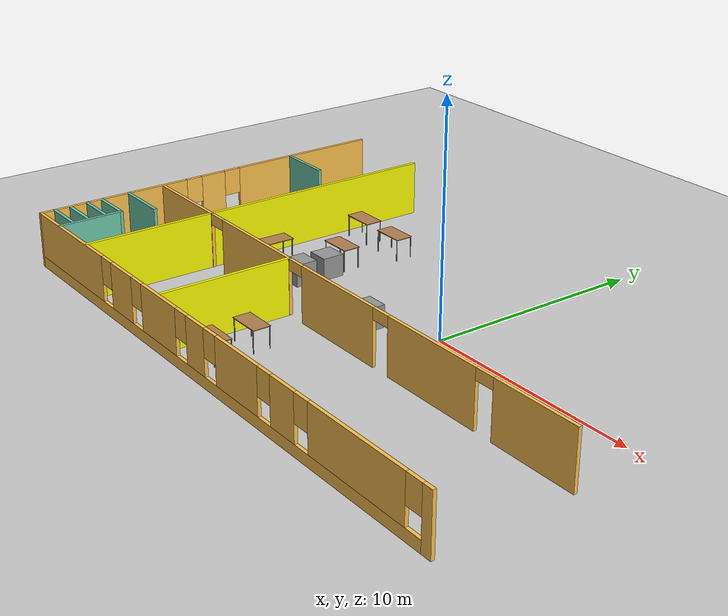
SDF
<sdf version="1.6">
 <world name="default">
  <model name="ground_plane">
   <static>1</static>
   <link name="link">
    <collision name="collision">
     <geometry><plane><normal>0 0 1</normal><size>100 100</size></plane></geometry>
     <surface><friction><ode><mu>100</mu><mu2>50</mu2></ode></friction></surface>
    </collision>
    <visual name="visual">
     <cast_shadows>0</cast_shadows>
     <geometry><plane><normal>0 0 1</normal><size>100 100</size></plane></geometry>
     <material>
      <script><uri>file://media/materials/scripts/gazebo.material</uri><name>Gazebo/Grey</name></script>
     </material>
    </visual>
   </link>
  </model>
  <model name="mybuilding">
   <pose>-2.36213 -0.825276 0 0 -0 0</pose>
   <link name="Wall_104">
    <collision name="Wall_104_Collision">
     <geometry><box><size>17.1 0.15 2.5</size></box></geometry>
     <pose>0 0 1.25 0 -0 0</pose>
    </collision>
    <visual name="Wall_104_Visual">
     <pose>0 0 1.25 0 -0 0</pose>
     <geometry><box><size>17.1 0.15 2.5</size></box></geometry>
     <material>
      <script><uri>file://media/materials/scripts/gazebo.material</uri><name>Gazebo/Grey</name></script>
      <ambient>1 1 0 1</ambient>
     </material>
     <meta><layer>0</layer></meta>
    </visual>
    <pose>-9.12987 -0.014892 0 0 0 -1.5708</pose>
   </link>
   <link name="Wall_106">
    <collision name="Wall_106_Collision">
     <geometry><box><size>2.5 0.15 2.5</size></box></geometry>
     <pose>0 0 1.25 0 -0 0</pose>
    </collision>
    <visual name="Wall_106_Visual">
     <pose>0 0 1.25 0 -0 0</pose>
     <geometry><box><size>2.5 0.15 2.5</size></box></geometry>
     <material>
      <script><uri>file://media/materials/scripts/gazebo.material</uri><name>Gazebo/Grey</name></script>
      <ambient>0.435294 0.796078 0.67451 1</ambient>
     </material>
     <meta><layer>0</layer></meta>
    </visual>
    <pose>-12.1433 4.3296 0 0 -0 0</pose>
   </link>
   <link name="Wall_111">
    <collision name="Wall_111_Collision">
     <geometry><box><size>2.5 0.15 2.5</size></box></geometry>
     <pose>0 0 1.25 0 -0 0</pose>
    </collision>
    <visual name="Wall_111_Visual">
     <pose>0 0 1.25 0 -0 0</pose>
     <geometry><box><size>2.5 0.15 2.5</size></box></geometry>
     <material>
      <script><uri>file://media/materials/scripts/gazebo.material</uri><name>Gazebo/Grey</name></script>
      <ambient>0.435294 0.796078 0.67451 1</ambient>
     </material>
     <meta><layer>0</layer></meta>
    </visual>
    <pose>-12.2145 -4.32806 0 0 -0 0</pose>
   </link>
   <link name="Wall_139">
    <collision name="Wall_139_Collision">
     <geometry><box><size>3 0.15 2.5</size></box></geometry>
     <pose>0 0 1.25 0 -0 0</pose>
    </collision>
    <visual name="Wall_139_Visual">
     <pose>0 0 1.25 0 -0 0</pose>
     <geometry><box><size>3 0.15 2.5</size></box></geometry>
     <material>
      <script><uri>file://media/materials/scripts/gazebo.material</uri><name>Gazebo/Grey</name></script>
      <ambient>0.435294 0.796078 0.67451 1</ambient>
     </material>
     <meta><layer>0</layer></meta>
    </visual>
    <pose>-11.6 -7.09333 0 0 -0 1.5708</pose>
   </link>
   <link name="Wall_140">
    <collision name="Wall_140_Collision">
     <geometry><box><size>1.9 0.15 2.5</size></box></geometry>
     <pose>0 0 1.25 0 -0 0</pose>
    </collision>
    <visual name="Wall_140_Visual">
     <pose>0 0 1.25 0 -0 0</pose>
     <geometry><box><size>1.9 0.15 2.5</size></box></geometry>
     <material>
      <script><uri>file://media/materials/scripts/gazebo.material</uri><name>Gazebo/Grey</name></script>
      <ambient>0.435294 0.796078 0.67451 1</ambient>
     </material>
     <meta><layer>0</layer></meta>
    </visual>
    <pose>-12.475 -5.66833 0 0 -0 3.14159</pose>
   </link>
   <link name="Wall_142">
    <collision name="Wall_142_Collision">
     <geometry><box><size>1.75 0.15 2.5</size></box></geometry>
     <pose>0 0 1.25 0 -0 0</pose>
    </collision>
    <visual name="Wall_142_Visual">
     <pose>0 0 1.25 0 -0 0</pose>
     <geometry><box><size>1.75 0.15 2.5</size></box></geometry>
     <material>
      <script><uri>file://media/materials/scripts/gazebo.material</uri><name>Gazebo/Grey</name></script>
      <ambient>0.435294 0.796078 0.67451 1</ambient>
     </material>
     <meta><layer>0</layer></meta>
    </visual>
    <pose>-12.4841 -7.19003 0 0 -0 0</pose>
   </link>
   <link name="Wall_144">
    <collision name="Wall_144_Collision">
     <geometry><box><size>1.8 0.15 2.5</size></box></geometry>
     <pose>0 0 1.25 0 -0 0</pose>
    </collision>
    <visual name="Wall_144_Visual">
     <pose>0 0 1.25 0 -0 0</pose>
     <geometry><box><size>1.8 0.15 2.5</size></box></geometry>
     <material>
      <script><uri>file://media/materials/scripts/gazebo.material</uri><name>Gazebo/Grey</name></script>
      <ambient>0.435294 0.796078 0.67451 1</ambient>
     </material>
     <meta><layer>0</layer></meta>
    </visual>
    <pose>-12.5407 -6.37701 0 0 -0 0</pose>
   </link>
   <link name="Wall_147">
    <collision name="Wall_147_Collision">
     <geometry><box><size>1.8 0.15 2.5</size></box></geometry>
     <pose>0 0 1.25 0 -0 0</pose>
    </collision>
    <visual name="Wall_147_Visual">
     <pose>0 0 1.25 0 -0 0</pose>
     <geometry><box><size>1.8 0.15 2.5</size></box></geometry>
     <material>
      <script><uri>file://media/materials/scripts/gazebo.material</uri><name>Gazebo/Grey</name></script>
      <ambient>0.435294 0.796078 0.67451 1</ambient>
     </material>
     <meta><layer>0</layer></meta>
    </visual>
    <pose>-12.5758 -7.90564 0 0 -0 0</pose>
   </link>
   <link name="Wall_156">
    <collision name="Wall_156_Collision">
     <geometry><box><size>6 0.15 2.5</size></box></geometry>
     <pose>0 0 1.25 0 -0 0</pose>
    </collision>
    <visual name="Wall_156_Visual">
     <pose>0 0 1.25 0 -0 0</pose>
     <geometry><box><size>6 0.15 2.5</size></box></geometry>
     <material>
      <script><uri>file://media/materials/scripts/gazebo.material</uri><name>Gazebo/Grey</name></script>
      <ambient>1 1 0 1</ambient>
     </material>
     <meta><layer>0</layer></meta>
    </visual>
    <pose>-3.08532 -5.54983 0 0 0 -1.5708</pose>
   </link>
   <link name="Wall_89">
    <pose>-13.425 0 0 0 -0 1.5708</pose>
    <visual name="Wall_89_Visual_0">
     <pose>-5.00389 0 1.25 0 -0 0</pose>
     <geometry><box><size>7.24221 0.15 2.5</size></box></geometry>
     <material>
      <script><uri>file://media/materials/scripts/gazebo.material</uri><name>Gazebo/Grey</name></script>
      <ambient>1 0.764706 0.305882 1</ambient>
     </material>
     <meta><layer>0</layer></meta>
    </visual>
    <collision name="Wall_89_Collision_0">
     <geometry><box><size>7.24221 0.15 2.5</size></box></geometry>
     <pose>-5.00389 0 1.25 0 -0 0</pose>
    </collision>
    <visual name="Wall_89_Visual_1">
     <pose>3.62111 0 0.25 0 -0 0</pose>
     <geometry><box><size>10.0078 0.15 0.5</size></box></geometry>
     <material>
      <script><uri>file://media/materials/scripts/gazebo.material</uri><name>Gazebo/Grey</name></script>
      <ambient>1 0.764706 0.305882 1</ambient>
     </material>
     <meta><layer>0</layer></meta>
    </visual>
    <collision name="Wall_89_Collision_1">
     <geometry><box><size>10.0078 0.15 0.5</size></box></geometry>
     <pose>3.62111 0 0.25 0 -0 0</pose>
    </collision>
    <visual name="Wall_89_Visual_2">
     <pose>0.026482 0 1.5 0 -0 0</pose>
     <geometry><box><size>1.21854 0.15 2</size></box></geometry>
     <material>
      <script><uri>file://media/materials/scripts/gazebo.material</uri><name>Gazebo/Grey</name></script>
      <ambient>1 0.764706 0.305882 1</ambient>
     </material>
     <meta><layer>0</layer></meta>
    </visual>
    <collision name="Wall_89_Collision_2">
     <geometry><box><size>1.21854 0.15 2</size></box></geometry>
     <pose>0.026482 0 1.5 0 -0 0</pose>
    </collision>
    <visual name="Wall_89_Visual_3">
     <pose>5.03038 0 1.5 0 -0 0</pose>
     <geometry><box><size>7.18925 0.15 2</size></box></geometry>
     <material>
      <script><uri>file://media/materials/scripts/gazebo.material</uri><name>Gazebo/Grey</name></script>
      <ambient>1 0.764706 0.305882 1</ambient>
     </material>
     <meta><layer>0</layer></meta>
    </visual>
    <collision name="Wall_89_Collision_3">
     <geometry><box><size>7.18925 0.15 2</size></box></geometry>
     <pose>5.03038 0 1.5 0 -0 0</pose>
    </collision>
    <visual name="Wall_89_Visual_4">
     <pose>-0.982788 0 1.9 0 -0 0</pose>
     <geometry><box><size>0.8 0.15 1.2</size></box></geometry>
     <material>
      <script><uri>file://media/materials/scripts/gazebo.material</uri><name>Gazebo/Grey</name></script>
      <ambient>1 0.764706 0.305882 1</ambient>
     </material>
     <meta><layer>0</layer></meta>
    </visual>
    <collision name="Wall_89_Collision_4">
     <geometry><box><size>0.8 0.15 1.2</size></box></geometry>
     <pose>-0.982788 0 1.9 0 -0 0</pose>
    </collision>
    <visual name="Wall_89_Visual_5">
     <pose>1.03575 0 1.9 0 -0 0</pose>
     <geometry><box><size>0.8 0.15 1.2</size></box></geometry>
     <material>
      <script><uri>file://media/materials/scripts/gazebo.material</uri><name>Gazebo/Grey</name></script>
      <ambient>1 0.764706 0.305882 1</ambient>
     </material>
     <meta><layer>0</layer></meta>
    </visual>
    <collision name="Wall_89_Collision_5">
     <geometry><box><size>0.8 0.15 1.2</size></box></geometry>
     <pose>1.03575 0 1.9 0 -0 0</pose>
    </collision>
   </link>
   <link name="Wall_92">
    <pose>0 -8.55 0 0 -0 3.14159</pose>
    <visual name="Wall_92_Visual_0">
     <pose>-13.2614 0 1.25 0 -0 0</pose>
     <geometry><box><size>0.477212 0.15 2.5</size></box></geometry>
     <material>
      <script><uri>file://media/materials/scripts/gazebo.material</uri><name>Gazebo/Grey</name></script>
      <ambient>1 0.764706 0.305882 1</ambient>
     </material>
     <meta><layer>0</layer></meta>
    </visual>
    <collision name="Wall_92_Collision_0">
     <geometry><box><size>0.477212 0.15 2.5</size></box></geometry>
     <pose>-13.2614 0 1.25 0 -0 0</pose>
    </collision>
    <visual name="Wall_92_Visual_1">
     <pose>0.238606 0 0.25 0 -0 0</pose>
     <geometry><box><size>26.5228 0.15 0.5</size></box></geometry>
     <material>
      <script><uri>file://media/materials/scripts/gazebo.material</uri><name>Gazebo/Grey</name></script>
      <ambient>1 0.764706 0.305882 1</ambient>
     </material>
     <meta><layer>0</layer></meta>
    </visual>
    <collision name="Wall_92_Collision_1">
     <geometry><box><size>26.5228 0.15 0.5</size></box></geometry>
     <pose>0.238606 0 0.25 0 -0 0</pose>
    </collision>
    <visual name="Wall_92_Visual_2">
     <pose>-9.63968 0 1.5 0 -0 0</pose>
     <geometry><box><size>5.16621 0.15 2</size></box></geometry>
     <material>
      <script><uri>file://media/materials/scripts/gazebo.material</uri><name>Gazebo/Grey</name></script>
      <ambient>1 0.764706 0.305882 1</ambient>
     </material>
     <meta><layer>0</layer></meta>
    </visual>
    <collision name="Wall_92_Collision_2">
     <geometry><box><size>5.16621 0.15 2</size></box></geometry>
     <pose>-9.63968 0 1.5 0 -0 0</pose>
    </collision>
    <visual name="Wall_92_Visual_3">
     <pose>-5.52728 0 1.5 0 -0 0</pose>
     <geometry><box><size>1.45858 0.15 2</size></box></geometry>
     <material>
      <script><uri>file://media/materials/scripts/gazebo.material</uri><name>Gazebo/Grey</name></script>
      <ambient>1 0.764706 0.305882 1</ambient>
     </material>
     <meta><layer>0</layer></meta>
    </visual>
    <collision name="Wall_92_Collision_3">
     <geometry><box><size>1.45858 0.15 2</size></box></geometry>
     <pose>-5.52728 0 1.5 0 -0 0</pose>
    </collision>
    <visual name="Wall_92_Visual_4">
     <pose>-2.60995 0 1.5 0 -0 0</pose>
     <geometry><box><size>2.77609 0.15 2</size></box></geometry>
     <material>
      <script><uri>file://media/materials/scripts/gazebo.material</uri><name>Gazebo/Grey</name></script>
      <ambient>1 0.764706 0.305882 1</ambient>
     </material>
     <meta><layer>0</layer></meta>
    </visual>
    <collision name="Wall_92_Collision_4">
     <geometry><box><size>2.77609 0.15 2</size></box></geometry>
     <pose>-2.60995 0 1.5 0 -0 0</pose>
    </collision>
    <visual name="Wall_92_Visual_5">
     <pose>0.213279 0 1.5 0 -0 0</pose>
     <geometry><box><size>1.27037 0.15 2</size></box></geometry>
     <material>
      <script><uri>file://media/materials/scripts/gazebo.material</uri><name>Gazebo/Grey</name></script>
      <ambient>1 0.764706 0.305882 1</ambient>
     </material>
     <meta><layer>0</layer></meta>
    </visual>
    <collision name="Wall_92_Collision_5">
     <geometry><box><size>1.27037 0.15 2</size></box></geometry>
     <pose>0.213279 0 1.5 0 -0 0</pose>
    </collision>
    <visual name="Wall_92_Visual_6">
     <pose>2.9709 0 1.5 0 -0 0</pose>
     <geometry><box><size>2.64487 0.15 2</size></box></geometry>
     <material>
      <script><uri>file://media/materials/scripts/gazebo.material</uri><name>Gazebo/Grey</name></script>
      <ambient>1 0.764706 0.305882 1</ambient>
     </material>
     <meta><layer>0</layer></meta>
    </visual>
    <collision name="Wall_92_Collision_6">
     <geometry><box><size>2.64487 0.15 2</size></box></geometry>
     <pose>2.9709 0 1.5 0 -0 0</pose>
    </collision>
    <visual name="Wall_92_Visual_7">
     <pose>5.9481 0 1.5 0 -0 0</pose>
     <geometry><box><size>1.70954 0.15 2</size></box></geometry>
     <material>
      <script><uri>file://media/materials/scripts/gazebo.material</uri><name>Gazebo/Grey</name></script>
      <ambient>1 0.764706 0.305882 1</ambient>
     </material>
     <meta><layer>0</layer></meta>
    </visual>
    <collision name="Wall_92_Collision_7">
     <geometry><box><size>1.70954 0.15 2</size></box></geometry>
     <pose>5.9481 0 1.5 0 -0 0</pose>
    </collision>
    <visual name="Wall_92_Visual_8">
     <pose>10.5514 0 1.5 0 -0 0</pose>
     <geometry><box><size>5.89713 0.15 2</size></box></geometry>
     <material>
      <script><uri>file://media/materials/scripts/gazebo.material</uri><name>Gazebo/Grey</name></script>
      <ambient>1 0.764706 0.305882 1</ambient>
     </material>
     <meta><layer>0</layer></meta>
    </visual>
    <collision name="Wall_92_Collision_8">
     <geometry><box><size>5.89713 0.15 2</size></box></geometry>
     <pose>10.5514 0 1.5 0 -0 0</pose>
    </collision>
    <visual name="Wall_92_Visual_9">
     <pose>-12.6228 0 1.9 0 -0 0</pose>
     <geometry><box><size>0.8 0.15 1.2</size></box></geometry>
     <material>
      <script><uri>file://media/materials/scripts/gazebo.material</uri><name>Gazebo/Grey</name></script>
      <ambient>1 0.764706 0.305882 1</ambient>
     </material>
     <meta><layer>0</layer></meta>
    </visual>
    <collision name="Wall_92_Collision_9">
     <geometry><box><size>0.8 0.15 1.2</size></box></geometry>
     <pose>-12.6228 0 1.9 0 -0 0</pose>
    </collision>
    <visual name="Wall_92_Visual_10">
     <pose>-6.65658 0 1.9 0 -0 0</pose>
     <geometry><box><size>0.8 0.15 1.2</size></box></geometry>
     <material>
      <script><uri>file://media/materials/scripts/gazebo.material</uri><name>Gazebo/Grey</name></script>
      <ambient>1 0.764706 0.305882 1</ambient>
     </material>
     <meta><layer>0</layer></meta>
    </visual>
    <collision name="Wall_92_Collision_10">
     <geometry><box><size>0.8 0.15 1.2</size></box></geometry>
     <pose>-6.65658 0 1.9 0 -0 0</pose>
    </collision>
    <visual name="Wall_92_Visual_11">
     <pose>-4.39799 0 1.9 0 -0 0</pose>
     <geometry><box><size>0.8 0.15 1.2</size></box></geometry>
     <material>
      <script><uri>file://media/materials/scripts/gazebo.material</uri><name>Gazebo/Grey</name></script>
      <ambient>1 0.764706 0.305882 1</ambient>
     </material>
     <meta><layer>0</layer></meta>
    </visual>
    <collision name="Wall_92_Collision_11">
     <geometry><box><size>0.8 0.15 1.2</size></box></geometry>
     <pose>-4.39799 0 1.9 0 -0 0</pose>
    </collision>
    <visual name="Wall_92_Visual_12">
     <pose>-0.821904 0 1.9 0 -0 0</pose>
     <geometry><box><size>0.8 0.15 1.2</size></box></geometry>
     <material>
      <script><uri>file://media/materials/scripts/gazebo.material</uri><name>Gazebo/Grey</name></script>
      <ambient>1 0.764706 0.305882 1</ambient>
     </material>
     <meta><layer>0</layer></meta>
    </visual>
    <collision name="Wall_92_Collision_12">
     <geometry><box><size>0.8 0.15 1.2</size></box></geometry>
     <pose>-0.821904 0 1.9 0 -0 0</pose>
    </collision>
    <visual name="Wall_92_Visual_13">
     <pose>1.24846 0 1.9 0 -0 0</pose>
     <geometry><box><size>0.8 0.15 1.2</size></box></geometry>
     <material>
      <script><uri>file://media/materials/scripts/gazebo.material</uri><name>Gazebo/Grey</name></script>
      <ambient>1 0.764706 0.305882 1</ambient>
     </material>
     <meta><layer>0</layer></meta>
    </visual>
    <collision name="Wall_92_Collision_13">
     <geometry><box><size>0.8 0.15 1.2</size></box></geometry>
     <pose>1.24846 0 1.9 0 -0 0</pose>
    </collision>
    <visual name="Wall_92_Visual_14">
     <pose>4.69333 0 1.9 0 -0 0</pose>
     <geometry><box><size>0.8 0.15 1.2</size></box></geometry>
     <material>
      <script><uri>file://media/materials/scripts/gazebo.material</uri><name>Gazebo/Grey</name></script>
      <ambient>1 0.764706 0.305882 1</ambient>
     </material>
     <meta><layer>0</layer></meta>
    </visual>
    <collision name="Wall_92_Collision_14">
     <geometry><box><size>0.8 0.15 1.2</size></box></geometry>
     <pose>4.69333 0 1.9 0 -0 0</pose>
    </collision>
    <visual name="Wall_92_Visual_15">
     <pose>7.20287 0 1.9 0 -0 0</pose>
     <geometry><box><size>0.8 0.15 1.2</size></box></geometry>
     <material>
      <script><uri>file://media/materials/scripts/gazebo.material</uri><name>Gazebo/Grey</name></script>
      <ambient>1 0.764706 0.305882 1</ambient>
     </material>
     <meta><layer>0</layer></meta>
    </visual>
    <collision name="Wall_92_Collision_15">
     <geometry><box><size>0.8 0.15 1.2</size></box></geometry>
     <pose>7.20287 0 1.9 0 -0 0</pose>
    </collision>
   </link>
   <link name="Wall_96">
    <pose>-0.005489 -2.58663 0 0 -0 0</pose>
    <visual name="Wall_96_Visual_0">
     <pose>-11.1995 0 1.25 0 -0 0</pose>
     <geometry><box><size>4.35098 0.15 2.5</size></box></geometry>
     <material>
      <script><uri>file://media/materials/scripts/gazebo.material</uri><name>Gazebo/Grey</name></script>
      <ambient>1 0.764706 0.305882 1</ambient>
     </material>
     <meta><layer>0</layer></meta>
    </visual>
    <collision name="Wall_96_Collision_0">
     <geometry><box><size>4.35098 0.15 2.5</size></box></geometry>
     <pose>-11.1995 0 1.25 0 -0 0</pose>
    </collision>
    <visual name="Wall_96_Visual_1">
     <pose>-5.56001 0 1.25 0 -0 0</pose>
     <geometry><box><size>5.12803 0.15 2.5</size></box></geometry>
     <material>
      <script><uri>file://media/materials/scripts/gazebo.material</uri><name>Gazebo/Grey</name></script>
      <ambient>1 0.764706 0.305882 1</ambient>
     </material>
     <meta><layer>0</layer></meta>
    </visual>
    <collision name="Wall_96_Collision_1">
     <geometry><box><size>5.12803 0.15 2.5</size></box></geometry>
     <pose>-5.56001 0 1.25 0 -0 0</pose>
    </collision>
    <visual name="Wall_96_Visual_2">
     <pose>0.261721 0 1.25 0 -0 0</pose>
     <geometry><box><size>4.71542 0.15 2.5</size></box></geometry>
     <material>
      <script><uri>file://media/materials/scripts/gazebo.material</uri><name>Gazebo/Grey</name></script>
      <ambient>1 0.764706 0.305882 1</ambient>
     </material>
     <meta><layer>0</layer></meta>
    </visual>
    <collision name="Wall_96_Collision_2">
     <geometry><box><size>4.71542 0.15 2.5</size></box></geometry>
     <pose>0.261721 0 1.25 0 -0 0</pose>
    </collision>
    <visual name="Wall_96_Visual_3">
     <pose>5.98325 0 1.25 0 -0 0</pose>
     <geometry><box><size>4.92764 0.15 2.5</size></box></geometry>
     <material>
      <script><uri>file://media/materials/scripts/gazebo.material</uri><name>Gazebo/Grey</name></script>
      <ambient>1 0.764706 0.305882 1</ambient>
     </material>
     <meta><layer>0</layer></meta>
    </visual>
    <collision name="Wall_96_Collision_3">
     <geometry><box><size>4.92764 0.15 2.5</size></box></geometry>
     <pose>5.98325 0 1.25 0 -0 0</pose>
    </collision>
    <visual name="Wall_96_Visual_4">
     <pose>11.361 0 1.25 0 -0 0</pose>
     <geometry><box><size>4.02792 0.15 2.5</size></box></geometry>
     <material>
      <script><uri>file://media/materials/scripts/gazebo.material</uri><name>Gazebo/Grey</name></script>
      <ambient>1 0.764706 0.305882 1</ambient>
     </material>
     <meta><layer>0</layer></meta>
    </visual>
    <collision name="Wall_96_Collision_4">
     <geometry><box><size>4.02792 0.15 2.5</size></box></geometry>
     <pose>11.361 0 1.25 0 -0 0</pose>
    </collision>
    <visual name="Wall_96_Visual_5">
     <pose>-8.57402 0 2.25 0 -0 0</pose>
     <geometry><box><size>0.9 0.15 0.5</size></box></geometry>
     <material>
      <script><uri>file://media/materials/scripts/gazebo.material</uri><name>Gazebo/Grey</name></script>
      <ambient>1 0.764706 0.305882 1</ambient>
     </material>
     <meta><layer>0</layer></meta>
    </visual>
    <collision name="Wall_96_Collision_5">
     <geometry><box><size>0.9 0.15 0.5</size></box></geometry>
     <pose>-8.57402 0 2.25 0 -0 0</pose>
    </collision>
    <visual name="Wall_96_Visual_6">
     <pose>-2.54599 0 2.25 0 -0 0</pose>
     <geometry><box><size>0.9 0.15 0.5</size></box></geometry>
     <material>
      <script><uri>file://media/materials/scripts/gazebo.material</uri><name>Gazebo/Grey</name></script>
      <ambient>1 0.764706 0.305882 1</ambient>
     </material>
     <meta><layer>0</layer></meta>
    </visual>
    <collision name="Wall_96_Collision_6">
     <geometry><box><size>0.9 0.15 0.5</size></box></geometry>
     <pose>-2.54599 0 2.25 0 -0 0</pose>
    </collision>
    <visual name="Wall_96_Visual_7">
     <pose>3.06943 0 2.25 0 -0 0</pose>
     <geometry><box><size>0.9 0.15 0.5</size></box></geometry>
     <material>
      <script><uri>file://media/materials/scripts/gazebo.material</uri><name>Gazebo/Grey</name></script>
      <ambient>1 0.764706 0.305882 1</ambient>
     </material>
     <meta><layer>0</layer></meta>
    </visual>
    <collision name="Wall_96_Collision_7">
     <geometry><box><size>0.9 0.15 0.5</size></box></geometry>
     <pose>3.06943 0 2.25 0 -0 0</pose>
    </collision>
    <visual name="Wall_96_Visual_8">
     <pose>8.89708 0 2.25 0 -0 0</pose>
     <geometry><box><size>0.9 0.15 0.5</size></box></geometry>
     <material>
      <script><uri>file://media/materials/scripts/gazebo.material</uri><name>Gazebo/Grey</name></script>
      <ambient>1 0.764706 0.305882 1</ambient>
     </material>
     <meta><layer>0</layer></meta>
    </visual>
    <collision name="Wall_96_Collision_8">
     <geometry><box><size>0.9 0.15 0.5</size></box></geometry>
     <pose>8.89708 0 2.25 0 -0 0</pose>
    </collision>
   </link>
   <static>1</static>
  </model>
  <model name="table_0">
   <static>1</static>
   <link name="link">
    <collision name="surface">
     <pose>0 0 1 0 -0 0</pose>
     <geometry><box><size>1.5 0.8 0.03</size></box></geometry>
     <surface><friction><ode><mu>0.6</mu><mu2>0.6</mu2></ode></friction></surface>
    </collision>
    <visual name="visual1">
     <pose>0 0 1 0 -0 0</pose>
     <geometry><box><size>1.5 0.8 0.03</size></box></geometry>
     <material>
      <script><uri>file://media/materials/scripts/gazebo.material</uri><name>Gazebo/Wood</name></script>
     </material>
    </visual>
    <collision name="front_left_leg">
     <pose>0.68 0.38 0.5 0 -0 0</pose>
     <geometry><cylinder><radius>0.02</radius><length>1</length></cylinder></geometry>
    </collision>
    <visual name="front_left_leg">
     <pose>0.68 0.38 0.5 0 -0 0</pose>
     <geometry><cylinder><radius>0.02</radius><length>1</length></cylinder></geometry>
     <material>
      <script><uri>file://media/materials/scripts/gazebo.material</uri><name>Gazebo/Grey</name></script>
     </material>
    </visual>
    <collision name="front_right_leg">
     <pose>0.68 -0.38 0.5 0 -0 0</pose>
     <geometry><cylinder><radius>0.02</radius><length>1</length></cylinder></geometry>
    </collision>
    <visual name="front_right_leg">
     <pose>0.68 -0.38 0.5 0 -0 0</pose>
     <geometry><cylinder><radius>0.02</radius><length>1</length></cylinder></geometry>
     <material>
      <script><uri>file://media/materials/scripts/gazebo.material</uri><name>Gazebo/Grey</name></script>
     </material>
    </visual>
    <collision name="back_right_leg">
     <pose>-0.68 -0.38 0.5 0 -0 0</pose>
     <geometry><cylinder><radius>0.02</radius><length>1</length></cylinder></geometry>
    </collision>
    <visual name="back_right_leg">
     <pose>-0.68 -0.38 0.5 0 -0 0</pose>
     <geometry><cylinder><radius>0.02</radius><length>1</length></cylinder></geometry>
     <material>
      <script><uri>file://media/materials/scripts/gazebo.material</uri><name>Gazebo/Grey</name></script>
     </material>
    </visual>
    <collision name="back_left_leg">
     <pose>-0.68 0.38 0.5 0 -0 0</pose>
     <geometry><cylinder><radius>0.02</radius><length>1</length></cylinder></geometry>
    </collision>
    <visual name="back_left_leg">
     <pose>-0.68 0.38 0.5 0 -0 0</pose>
     <geometry><cylinder><radius>0.02</radius><length>1</length></cylinder></geometry>
     <material>
      <script><uri>file://media/materials/scripts/gazebo.material</uri><name>Gazebo/Grey</name></script>
     </material>
    </visual>
   </link>
   <pose>-7.90072 3.80794 0 0 -0 0</pose>
  </model>
  <model name="table_1">
   <static>1</static>
   <link name="link">
    <collision name="surface">
     <pose>0 0 1 0 -0 0</pose>
     <geometry><box><size>1.5 0.8 0.03</size></box></geometry>
     <surface><friction><ode><mu>0.6</mu><mu2>0.6</mu2></ode></friction></surface>
    </collision>
    <visual name="visual1">
     <pose>0 0 1 0 -0 0</pose>
     <geometry><box><size>1.5 0.8 0.03</size></box></geometry>
     <material>
      <script><uri>file://media/materials/scripts/gazebo.material</uri><name>Gazebo/Wood</name></script>
     </material>
    </visual>
    <collision name="front_left_leg">
     <pose>0.68 0.38 0.5 0 -0 0</pose>
     <geometry><cylinder><radius>0.02</radius><length>1</length></cylinder></geometry>
    </collision>
    <visual name="front_left_leg">
     <pose>0.68 0.38 0.5 0 -0 0</pose>
     <geometry><cylinder><radius>0.02</radius><length>1</length></cylinder></geometry>
     <material>
      <script><uri>file://media/materials/scripts/gazebo.material</uri><name>Gazebo/Grey</name></script>
     </material>
    </visual>
    <collision name="front_right_leg">
     <pose>0.68 -0.38 0.5 0 -0 0</pose>
     <geometry><cylinder><radius>0.02</radius><length>1</length></cylinder></geometry>
    </collision>
    <visual name="front_right_leg">
     <pose>0.68 -0.38 0.5 0 -0 0</pose>
     <geometry><cylinder><radius>0.02</radius><length>1</length></cylinder></geometry>
     <material>
      <script><uri>file://media/materials/scripts/gazebo.material</uri><name>Gazebo/Grey</name></script>
     </material>
    </visual>
    <collision name="back_right_leg">
     <pose>-0.68 -0.38 0.5 0 -0 0</pose>
     <geometry><cylinder><radius>0.02</radius><length>1</length></cylinder></geometry>
    </collision>
    <visual name="back_right_leg">
     <pose>-0.68 -0.38 0.5 0 -0 0</pose>
     <geometry><cylinder><radius>0.02</radius><length>1</length></cylinder></geometry>
     <material>
      <script><uri>file://media/materials/scripts/gazebo.material</uri><name>Gazebo/Grey</name></script>
     </material>
    </visual>
    <collision name="back_left_leg">
     <pose>-0.68 0.38 0.5 0 -0 0</pose>
     <geometry><cylinder><radius>0.02</radius><length>1</length></cylinder></geometry>
    </collision>
    <visual name="back_left_leg">
     <pose>-0.68 0.38 0.5 0 -0 0</pose>
     <geometry><cylinder><radius>0.02</radius><length>1</length></cylinder></geometry>
     <material>
      <script><uri>file://media/materials/scripts/gazebo.material</uri><name>Gazebo/Grey</name></script>
     </material>
    </visual>
   </link>
   <pose>-10.1719 3.82975 0 0 -0 0</pose>
  </model>
  <model name="table_9">
   <static>1</static>
   <link name="link">
    <collision name="surface">
     <pose>0 0 1 0 -0 0</pose>
     <geometry><box><size>1.5 0.8 0.03</size></box></geometry>
     <surface><friction><ode><mu>0.6</mu><mu2>0.6</mu2></ode></friction></surface>
    </collision>
    <visual name="visual1">
     <pose>0 0 1 0 -0 0</pose>
     <geometry><box><size>1.5 0.8 0.03</size></box></geometry>
     <material>
      <script><uri>file://media/materials/scripts/gazebo.material</uri><name>Gazebo/Wood</name></script>
     </material>
    </visual>
    <collision name="front_left_leg">
     <pose>0.68 0.38 0.5 0 -0 0</pose>
     <geometry><cylinder><radius>0.02</radius><length>1</length></cylinder></geometry>
    </collision>
    <visual name="front_left_leg">
     <pose>0.68 0.38 0.5 0 -0 0</pose>
     <geometry><cylinder><radius>0.02</radius><length>1</length></cylinder></geometry>
     <material>
      <script><uri>file://media/materials/scripts/gazebo.material</uri><name>Gazebo/Grey</name></script>
     </material>
    </visual>
    <collision name="front_right_leg">
     <pose>0.68 -0.38 0.5 0 -0 0</pose>
     <geometry><cylinder><radius>0.02</radius><length>1</length></cylinder></geometry>
    </collision>
    <visual name="front_right_leg">
     <pose>0.68 -0.38 0.5 0 -0 0</pose>
     <geometry><cylinder><radius>0.02</radius><length>1</length></cylinder></geometry>
     <material>
      <script><uri>file://media/materials/scripts/gazebo.material</uri><name>Gazebo/Grey</name></script>
     </material>
    </visual>
    <collision name="back_right_leg">
     <pose>-0.68 -0.38 0.5 0 -0 0</pose>
     <geometry><cylinder><radius>0.02</radius><length>1</length></cylinder></geometry>
    </collision>
    <visual name="back_right_leg">
     <pose>-0.68 -0.38 0.5 0 -0 0</pose>
     <geometry><cylinder><radius>0.02</radius><length>1</length></cylinder></geometry>
     <material>
      <script><uri>file://media/materials/scripts/gazebo.material</uri><name>Gazebo/Grey</name></script>
     </material>
    </visual>
    <collision name="back_left_leg">
     <pose>-0.68 0.38 0.5 0 -0 0</pose>
     <geometry><cylinder><radius>0.02</radius><length>1</length></cylinder></geometry>
    </collision>
    <visual name="back_left_leg">
     <pose>-0.68 0.38 0.5 0 -0 0</pose>
     <geometry><cylinder><radius>0.02</radius><length>1</length></cylinder></geometry>
     <material>
      <script><uri>file://media/materials/scripts/gazebo.material</uri><name>Gazebo/Grey</name></script>
     </material>
    </visual>
   </link>
   <pose>-3.99606 -6.13361 0 0 -0 0</pose>
  </model>
  <model name="table_10">
   <static>1</static>
   <link name="link">
    <collision name="surface">
     <pose>0 0 1 0 -0 0</pose>
     <geometry><box><size>1.5 0.8 0.03</size></box></geometry>
     <surface><friction><ode><mu>0.6</mu><mu2>0.6</mu2></ode></friction></surface>
    </collision>
    <visual name="visual1">
     <pose>0 0 1 0 -0 0</pose>
     <geometry><box><size>1.5 0.8 0.03</size></box></geometry>
     <material>
      <script><uri>file://media/materials/scripts/gazebo.material</uri><name>Gazebo/Wood</name></script>
     </material>
    </visual>
    <collision name="front_left_leg">
     <pose>0.68 0.38 0.5 0 -0 0</pose>
     <geometry><cylinder><radius>0.02</radius><length>1</length></cylinder></geometry>
    </collision>
    <visual name="front_left_leg">
     <pose>0.68 0.38 0.5 0 -0 0</pose>
     <geometry><cylinder><radius>0.02</radius><length>1</length></cylinder></geometry>
     <material>
      <script><uri>file://media/materials/scripts/gazebo.material</uri><name>Gazebo/Grey</name></script>
     </material>
    </visual>
    <collision name="front_right_leg">
     <pose>0.68 -0.38 0.5 0 -0 0</pose>
     <geometry><cylinder><radius>0.02</radius><length>1</length></cylinder></geometry>
    </collision>
    <visual name="front_right_leg">
     <pose>0.68 -0.38 0.5 0 -0 0</pose>
     <geometry><cylinder><radius>0.02</radius><length>1</length></cylinder></geometry>
     <material>
      <script><uri>file://media/materials/scripts/gazebo.material</uri><name>Gazebo/Grey</name></script>
     </material>
    </visual>
    <collision name="back_right_leg">
     <pose>-0.68 -0.38 0.5 0 -0 0</pose>
     <geometry><cylinder><radius>0.02</radius><length>1</length></cylinder></geometry>
    </collision>
    <visual name="back_right_leg">
     <pose>-0.68 -0.38 0.5 0 -0 0</pose>
     <geometry><cylinder><radius>0.02</radius><length>1</length></cylinder></geometry>
     <material>
      <script><uri>file://media/materials/scripts/gazebo.material</uri><name>Gazebo/Grey</name></script>
     </material>
    </visual>
    <collision name="back_left_leg">
     <pose>-0.68 0.38 0.5 0 -0 0</pose>
     <geometry><cylinder><radius>0.02</radius><length>1</length></cylinder></geometry>
    </collision>
    <visual name="back_left_leg">
     <pose>-0.68 0.38 0.5 0 -0 0</pose>
     <geometry><cylinder><radius>0.02</radius><length>1</length></cylinder></geometry>
     <material>
      <script><uri>file://media/materials/scripts/gazebo.material</uri><name>Gazebo/Grey</name></script>
     </material>
    </visual>
   </link>
   <pose>-3.90281 -7.9171 0 0 -0 0</pose>
  </model>
  <model name="table_13">
   <static>1</static>
   <link name="link">
    <collision name="surface">
     <pose>0 0 1 0 -0 0</pose>
     <geometry><box><size>1.5 0.8 0.03</size></box></geometry>
     <surface><friction><ode><mu>0.6</mu><mu2>0.6</mu2></ode></friction></surface>
    </collision>
    <visual name="visual1">
     <pose>0 0 1 0 -0 0</pose>
     <geometry><box><size>1.5 0.8 0.03</size></box></geometry>
     <material>
      <script><uri>file://media/materials/scripts/gazebo.material</uri><name>Gazebo/Wood</name></script>
     </material>
    </visual>
    <collision name="front_left_leg">
     <pose>0.68 0.38 0.5 0 -0 0</pose>
     <geometry><cylinder><radius>0.02</radius><length>1</length></cylinder></geometry>
    </collision>
    <visual name="front_left_leg">
     <pose>0.68 0.38 0.5 0 -0 0</pose>
     <geometry><cylinder><radius>0.02</radius><length>1</length></cylinder></geometry>
     <material>
      <script><uri>file://media/materials/scripts/gazebo.material</uri><name>Gazebo/Grey</name></script>
     </material>
    </visual>
    <collision name="front_right_leg">
     <pose>0.68 -0.38 0.5 0 -0 0</pose>
     <geometry><cylinder><radius>0.02</radius><length>1</length></cylinder></geometry>
    </collision>
    <visual name="front_right_leg">
     <pose>0.68 -0.38 0.5 0 -0 0</pose>
     <geometry><cylinder><radius>0.02</radius><length>1</length></cylinder></geometry>
     <material>
      <script><uri>file://media/materials/scripts/gazebo.material</uri><name>Gazebo/Grey</name></script>
     </material>
    </visual>
    <collision name="back_right_leg">
     <pose>-0.68 -0.38 0.5 0 -0 0</pose>
     <geometry><cylinder><radius>0.02</radius><length>1</length></cylinder></geometry>
    </collision>
    <visual name="back_right_leg">
     <pose>-0.68 -0.38 0.5 0 -0 0</pose>
     <geometry><cylinder><radius>0.02</radius><length>1</length></cylinder></geometry>
     <material>
      <script><uri>file://media/materials/scripts/gazebo.material</uri><name>Gazebo/Grey</name></script>
     </material>
    </visual>
    <collision name="back_left_leg">
     <pose>-0.68 0.38 0.5 0 -0 0</pose>
     <geometry><cylinder><radius>0.02</radius><length>1</length></cylinder></geometry>
    </collision>
    <visual name="back_left_leg">
     <pose>-0.68 0.38 0.5 0 -0 0</pose>
     <geometry><cylinder><radius>0.02</radius><length>1</length></cylinder></geometry>
     <material>
      <script><uri>file://media/materials/scripts/gazebo.material</uri><name>Gazebo/Grey</name></script>
     </material>
    </visual>
   </link>
   <pose>-8.30338 1.23121 0 0 -0 0</pose>
  </model>
  <model name="table_15">
   <static>1</static>
   <link name="link">
    <collision name="surface">
     <pose>0 0 1 0 -0 0</pose>
     <geometry><box><size>1.5 0.8 0.03</size></box></geometry>
     <surface><friction><ode><mu>0.6</mu><mu2>0.6</mu2></ode></friction></surface>
    </collision>
    <visual name="visual1">
     <pose>0 0 1 0 -0 0</pose>
     <geometry><box><size>1.5 0.8 0.03</size></box></geometry>
     <material>
      <script><uri>file://media/materials/scripts/gazebo.material</uri><name>Gazebo/Wood</name></script>
     </material>
    </visual>
    <collision name="front_left_leg">
     <pose>0.68 0.38 0.5 0 -0 0</pose>
     <geometry><cylinder><radius>0.02</radius><length>1</length></cylinder></geometry>
    </collision>
    <visual name="front_left_leg">
     <pose>0.68 0.38 0.5 0 -0 0</pose>
     <geometry><cylinder><radius>0.02</radius><length>1</length></cylinder></geometry>
     <material>
      <script><uri>file://media/materials/scripts/gazebo.material</uri><name>Gazebo/Grey</name></script>
     </material>
    </visual>
    <collision name="front_right_leg">
     <pose>0.68 -0.38 0.5 0 -0 0</pose>
     <geometry><cylinder><radius>0.02</radius><length>1</length></cylinder></geometry>
    </collision>
    <visual name="front_right_leg">
     <pose>0.68 -0.38 0.5 0 -0 0</pose>
     <geometry><cylinder><radius>0.02</radius><length>1</length></cylinder></geometry>
     <material>
      <script><uri>file://media/materials/scripts/gazebo.material</uri><name>Gazebo/Grey</name></script>
     </material>
    </visual>
    <collision name="back_right_leg">
     <pose>-0.68 -0.38 0.5 0 -0 0</pose>
     <geometry><cylinder><radius>0.02</radius><length>1</length></cylinder></geometry>
    </collision>
    <visual name="back_right_leg">
     <pose>-0.68 -0.38 0.5 0 -0 0</pose>
     <geometry><cylinder><radius>0.02</radius><length>1</length></cylinder></geometry>
     <material>
      <script><uri>file://media/materials/scripts/gazebo.material</uri><name>Gazebo/Grey</name></script>
     </material>
    </visual>
    <collision name="back_left_leg">
     <pose>-0.68 0.38 0.5 0 -0 0</pose>
     <geometry><cylinder><radius>0.02</radius><length>1</length></cylinder></geometry>
    </collision>
    <visual name="back_left_leg">
     <pose>-0.68 0.38 0.5 0 -0 0</pose>
     <geometry><cylinder><radius>0.02</radius><length>1</length></cylinder></geometry>
     <material>
      <script><uri>file://media/materials/scripts/gazebo.material</uri><name>Gazebo/Grey</name></script>
     </material>
    </visual>
   </link>
   <pose>-10.4399 -0.900833 0 0 0 -1.59831</pose>
  </model>
  <model name="unit_box_2">
   <pose>-2.73175 -1.52556 0.499995 0 1e-05 0</pose>
   <link name="link">
    <inertial>
     <mass>1</mass>
     <inertia>
      <ixx>0.166667</ixx>
      <ixy>0</ixy>
      <ixz>0</ixz>
      <iyy>0.166667</iyy>
      <iyz>0</iyz>
      <izz>0.166667</izz>
     </inertia>
    </inertial>
    <collision name="collision"><geometry><box><size>1 1 1</size></box></geometry></collision>
    <visual name="visual">
     <geometry><box><size>1 1 1</size></box></geometry>
     <material>
      <script><name>Gazebo/Grey</name><uri>file://media/materials/scripts/gazebo.material</uri></script>
     </material>
    </visual>
   </link>
  </model>
  <model name="unit_box_3">
   <pose>-7.85404 0.11467 0.499995 -1e-05 0 0</pose>
   <link name="link">
    <inertial>
     <mass>1</mass>
     <inertia>
      <ixx>0.166667</ixx>
      <ixy>0</ixy>
      <ixz>0</ixz>
      <iyy>0.166667</iyy>
      <iyz>0</iyz>
      <izz>0.166667</izz>
     </inertia>
    </inertial>
    <collision name="collision"><geometry><box><size>1 1 1</size></box></geometry></collision>
    <visual name="visual">
     <geometry><box><size>1 1 1</size></box></geometry>
     <material>
      <script><name>Gazebo/Grey</name><uri>file://media/materials/scripts/gazebo.material</uri></script>
     </material>
    </visual>
   </link>
  </model>
  <model name="unit_box_4">
   <pose>-7.95764 -1.2051 0.5 0 -0 0</pose>
   <link name="link">
    <inertial>
     <mass>1</mass>
     <inertia>
      <ixx>0.166667</ixx>
      <ixy>0</ixy>
      <ixz>0</ixz>
      <iyy>0.166667</iyy>
      <iyz>0</iyz>
      <izz>0.166667</izz>
     </inertia>
    </inertial>
    <collision name="collision"><geometry><box><size>1 1 1</size></box></geometry></collision>
    <visual name="visual">
     <geometry><box><size>1 1 1</size></box></geometry>
     <material>
      <script><name>Gazebo/Grey</name><uri>file://media/materials/scripts/gazebo.material</uri></script>
     </material>
    </visual>
   </link>
  </model>
 </world>
</sdf>
